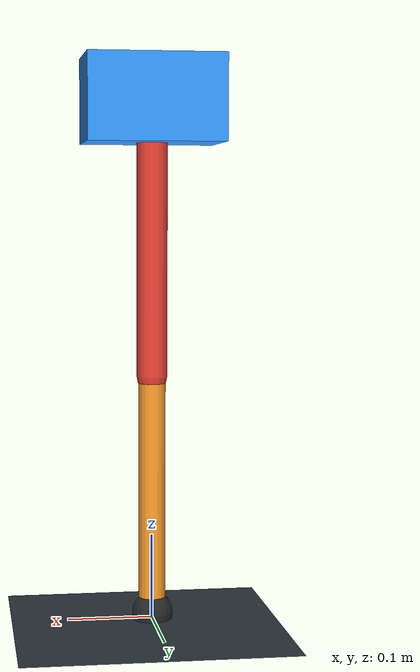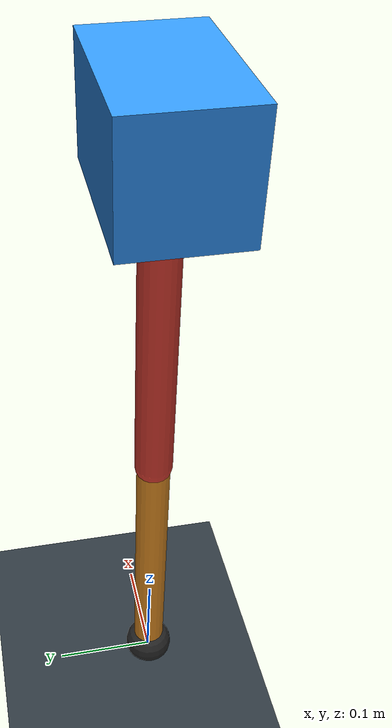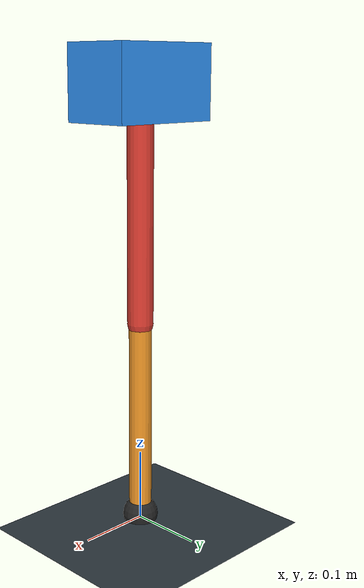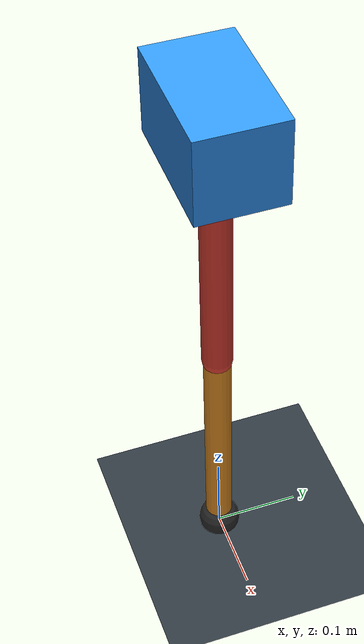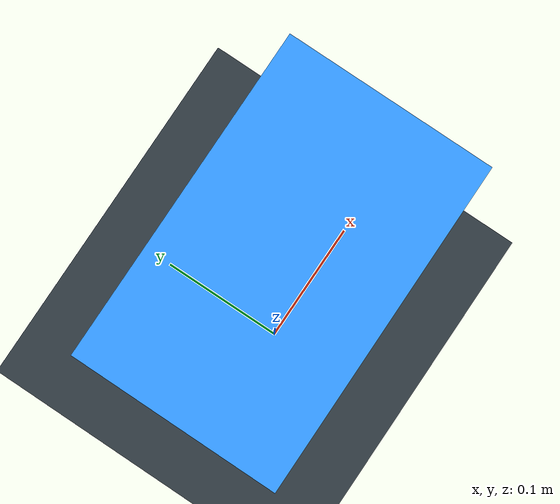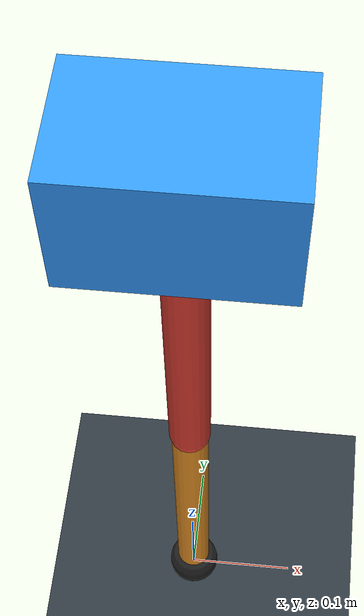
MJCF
<mujoco model="single_axis_two_bar">
  <compiler angle="radian" inertiafromgeom="true"/>
  <option timestep="0.001" integrator="implicitfast" gravity="0 0 -9.81"/>
  <default>
    <joint damping="0.08"/>
    <geom friction="1.2 0.01 0.0001" condim="3"/>
  </default>
  <worldbody>
    <geom name="floor" type="plane" size="5 5 0.1" rgba="0.18 0.22 0.25 1"/>
    <body name="carriage" pos="0 0 0.612868472507844">
      <joint name="pole_slide" type="slide" axis="0 0 1"/>
      <geom name="payload" type="box" size="0.08 0.05 0.05" mass="2.729184112842539" rgba="0.2 0.6 1 1"/>
      <body name="thigh" pos="0 0 0">
        <joint name="hip" type="hinge" axis="0 1 0"/>
        <geom name="thigh_link" type="capsule" fromto="0 0 0 0 0 -0.32290970243458067" size="0.018" mass="0.23007742985989696" rgba="0.9 0.25 0.2 1"/>
        <body name="shank" pos="0 0 -0.32290970243458067">
          <joint name="knee" type="hinge" axis="0 1 0"/>
          <geom name="shank_link" type="capsule" fromto="0 0 0 0 0 -0.2831402692229905" size="0.016" mass="0.2017411831899437" rgba="0.95 0.6 0.15 1"/>
          <geom name="foot" type="sphere" pos="0 0 -0.2831402692229905" size="0.025" mass="0.03" rgba="0.15 0.15 0.15 1"/>
          <site name="toe" pos="0 0 -0.2831402692229905" size="0.008"/>
        </body>
      </body>
    </body>
  </worldbody>
  <actuator>
    <motor name="hip_motor" joint="hip" ctrlrange="-35.86860254594063 35.86860254594063"/>
    <motor name="knee_motor" joint="knee" ctrlrange="-80.47942300398107 80.47942300398107"/>
  </actuator>
</mujoco>
